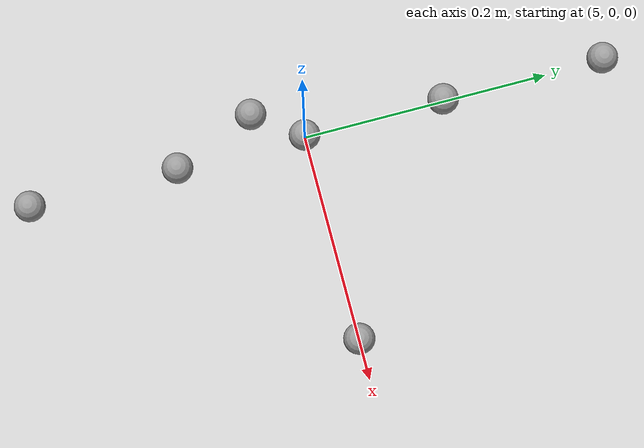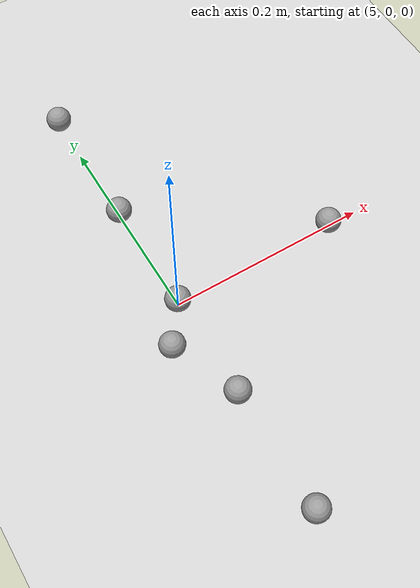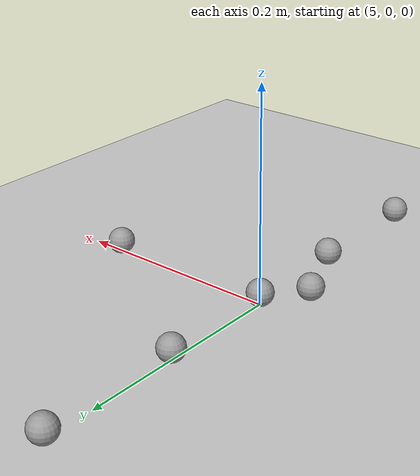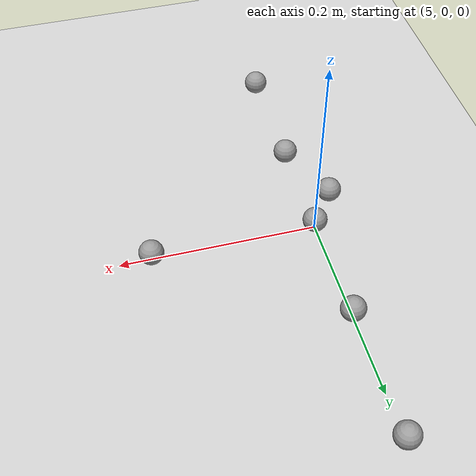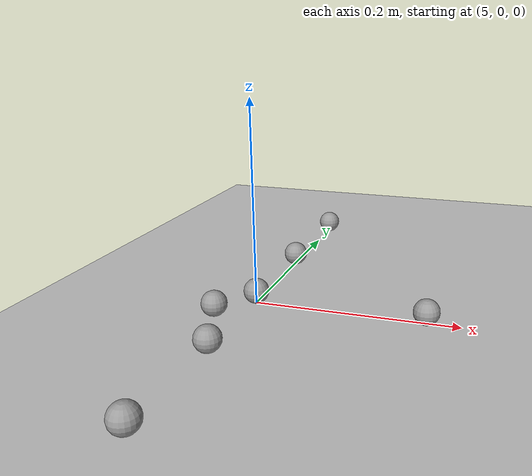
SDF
<sdf version="1.6">
 <world name="default">
  <model name="ground_plane">
   <static>1</static>
   <link name="link">
    <collision name="collision">
     <geometry><plane><normal>0 0 1</normal><size>100 100</size></plane></geometry>
     <surface><friction><ode><mu>100</mu><mu2>50</mu2></ode></friction></surface>
    </collision>
    <visual name="visual">
     <cast_shadows>0</cast_shadows>
     <geometry><plane><normal>0 0 1</normal><size>100 100</size></plane></geometry>
     <material>
      <script><uri>file://media/materials/scripts/gazebo.material</uri><name>Gazebo/Grey</name></script>
     </material>
    </visual>
   </link>
  </model>
  <model name="ball_bearing_7_clone_4">
   <link name="link">
    <pose>0 0 0.003 0 -0 0</pose>
    <inertial>
     <mass>0.0011</mass>
     <inertia>
      <ixx>3.96e-09</ixx>
      <ixy>0</ixy>
      <ixz>0</ixz>
      <iyy>3.96e-09</iyy>
      <iyz>0</iyz>
      <izz>3.96e-09</izz>
     </inertia>
    </inertial>
    <collision name="collision">
     <geometry><sphere><radius>0.0125</radius></sphere></geometry>
     <surface>
      <contact>
       <poissons_ratio>0.305</poissons_ratio>
       <elastic_modulus>2e+11</elastic_modulus>
       <ode><kp>100000</kp><kd>100</kd><max_vel>100</max_vel><min_depth>0.001</min_depth></ode>
      </contact>
      <friction>
       <torsional>
        <coefficient>1</coefficient>
        <use_patch_radius>0</use_patch_radius>
        <surface_radius>0.01</surface_radius>
       </torsional>
      </friction>
     </surface>
    </collision>
    <visual name="visual">
     <geometry><sphere><radius>0.0125</radius></sphere></geometry>
     <material>
      <script><uri>file://media/materials/scripts/gazebo.material</uri><name>Gazebo/Grey</name></script>
     </material>
    </visual>
    <velocity_decay><linear>0</linear><angular>0.005</angular></velocity_decay>
   </link>
   <pose>5 -0.224227 0.009033 0 -0 0</pose>
  </model>
  <model name="ball_bearing_7_clone_5">
   <link name="link">
    <pose>0 0 0.003 0 -0 0</pose>
    <inertial>
     <mass>0.0011</mass>
     <inertia>
      <ixx>3.96e-09</ixx>
      <ixy>0</ixy>
      <ixz>0</ixz>
      <iyy>3.96e-09</iyy>
      <iyz>0</iyz>
      <izz>3.96e-09</izz>
     </inertia>
    </inertial>
    <collision name="collision">
     <geometry><sphere><radius>0.0125</radius></sphere></geometry>
     <surface>
      <contact>
       <poissons_ratio>0.305</poissons_ratio>
       <elastic_modulus>2e+11</elastic_modulus>
       <ode><kp>100000</kp><kd>100</kd><max_vel>100</max_vel><min_depth>0.001</min_depth></ode>
      </contact>
      <friction>
       <torsional>
        <coefficient>1</coefficient>
        <use_patch_radius>0</use_patch_radius>
        <surface_radius>0.01</surface_radius>
       </torsional>
      </friction>
     </surface>
    </collision>
    <visual name="visual">
     <geometry><sphere><radius>0.0125</radius></sphere></geometry>
     <material>
      <script><uri>file://media/materials/scripts/gazebo.material</uri><name>Gazebo/Grey</name></script>
     </material>
    </visual>
    <velocity_decay><linear>0</linear><angular>0.005</angular></velocity_decay>
   </link>
   <pose>5 0.11411 0.009338 0 -0 0</pose>
  </model>
  <model name="ball_bearing_7_clone_7">
   <link name="link">
    <pose>0 0 0.003 0 -0 0</pose>
    <inertial>
     <mass>0.0011</mass>
     <inertia>
      <ixx>3.96e-09</ixx>
      <ixy>0</ixy>
      <ixz>0</ixz>
      <iyy>3.96e-09</iyy>
      <iyz>0</iyz>
      <izz>3.96e-09</izz>
     </inertia>
    </inertial>
    <collision name="collision">
     <geometry><sphere><radius>0.0125</radius></sphere></geometry>
     <surface>
      <contact>
       <poissons_ratio>0.305</poissons_ratio>
       <elastic_modulus>2e+11</elastic_modulus>
       <ode><kp>100000</kp><kd>100</kd><max_vel>100</max_vel><min_depth>0.001</min_depth></ode>
      </contact>
      <friction>
       <torsional>
        <coefficient>1</coefficient>
        <use_patch_radius>0</use_patch_radius>
        <surface_radius>0.01</surface_radius>
       </torsional>
      </friction>
     </surface>
    </collision>
    <visual name="visual">
     <geometry><sphere><radius>0.0125</radius></sphere></geometry>
     <material>
      <script><uri>file://media/materials/scripts/gazebo.material</uri><name>Gazebo/Grey</name></script>
     </material>
    </visual>
    <velocity_decay><linear>0</linear><angular>0.005</angular></velocity_decay>
   </link>
   <pose>5 0 0.009312 0 -0 0</pose>
  </model>
  <model name="ball_bearing_7_clone_8">
   <link name="link">
    <pose>0 0 0.003 0 -0 0</pose>
    <inertial>
     <mass>0.0011</mass>
     <inertia>
      <ixx>3.96e-09</ixx>
      <ixy>0</ixy>
      <ixz>0</ixz>
      <iyy>3.96e-09</iyy>
      <iyz>0</iyz>
      <izz>3.96e-09</izz>
     </inertia>
    </inertial>
    <collision name="collision">
     <geometry><sphere><radius>0.0125</radius></sphere></geometry>
     <surface>
      <contact>
       <poissons_ratio>0.305</poissons_ratio>
       <elastic_modulus>2e+11</elastic_modulus>
       <ode><kp>100000</kp><kd>100</kd><max_vel>100</max_vel><min_depth>0.001</min_depth></ode>
      </contact>
      <friction>
       <torsional>
        <coefficient>1</coefficient>
        <use_patch_radius>0</use_patch_radius>
        <surface_radius>0.01</surface_radius>
       </torsional>
      </friction>
     </surface>
    </collision>
    <visual name="visual">
     <geometry><sphere><radius>0.0125</radius></sphere></geometry>
     <material>
      <script><uri>file://media/materials/scripts/gazebo.material</uri><name>Gazebo/Grey</name></script>
     </material>
    </visual>
    <velocity_decay><linear>0</linear><angular>0.005</angular></velocity_decay>
   </link>
   <pose>5 -0.104106 0.0085 0 -0 0</pose>
  </model>
  <model name="ball_bearing_7_clone_11">
   <link name="link">
    <pose>0 0 0.003 0 -0 0</pose>
    <inertial>
     <mass>0.0011</mass>
     <inertia>
      <ixx>3.96e-09</ixx>
      <ixy>0</ixy>
      <ixz>0</ixz>
      <iyy>3.96e-09</iyy>
      <iyz>0</iyz>
      <izz>3.96e-09</izz>
     </inertia>
    </inertial>
    <collision name="collision">
     <geometry><sphere><radius>0.0125</radius></sphere></geometry>
     <surface>
      <contact>
       <poissons_ratio>0.305</poissons_ratio>
       <elastic_modulus>2e+11</elastic_modulus>
       <ode><kp>100000</kp><kd>100</kd><max_vel>100</max_vel><min_depth>0.001</min_depth></ode>
      </contact>
      <friction>
       <torsional>
        <coefficient>1</coefficient>
        <use_patch_radius>0</use_patch_radius>
        <surface_radius>0.01</surface_radius>
       </torsional>
      </friction>
     </surface>
    </collision>
    <visual name="visual">
     <geometry><sphere><radius>0.0125</radius></sphere></geometry>
     <material>
      <script><uri>file://media/materials/scripts/gazebo.material</uri><name>Gazebo/Grey</name></script>
     </material>
    </visual>
    <velocity_decay><linear>0</linear><angular>0.005</angular></velocity_decay>
   </link>
   <pose>5 0.246166 0.008528 0 -0 0</pose>
  </model>
  <model name="ball_bearing_7_clone_12">
   <link name="link">
    <pose>0 0 0.003 0 -0 0</pose>
    <inertial>
     <mass>0.0011</mass>
     <inertia>
      <ixx>3.96e-09</ixx>
      <ixy>0</ixy>
      <ixz>0</ixz>
      <iyy>3.96e-09</iyy>
      <iyz>0</iyz>
      <izz>3.96e-09</izz>
     </inertia>
    </inertial>
    <collision name="collision">
     <geometry><sphere><radius>0.0125</radius></sphere></geometry>
     <surface>
      <contact>
       <poissons_ratio>0.305</poissons_ratio>
       <elastic_modulus>2e+11</elastic_modulus>
       <ode><kp>100000</kp><kd>100</kd><max_vel>100</max_vel><min_depth>0.001</min_depth></ode>
      </contact>
      <friction>
       <torsional>
        <coefficient>1</coefficient>
        <use_patch_radius>0</use_patch_radius>
        <surface_radius>0.01</surface_radius>
       </torsional>
      </friction>
     </surface>
    </collision>
    <visual name="visual">
     <geometry><sphere><radius>0.0125</radius></sphere></geometry>
     <material>
      <script><uri>file://media/materials/scripts/gazebo.material</uri><name>Gazebo/Grey</name></script>
     </material>
    </visual>
    <velocity_decay><linear>0</linear><angular>0.005</angular></velocity_decay>
   </link>
   <pose>5.16752 0 0.0085 0 -0 0</pose>
  </model>
  <model name="ball_bearing_7_clone_13">
   <link name="link">
    <pose>0 0 0.003 0 -0 0</pose>
    <inertial>
     <mass>0.0011</mass>
     <inertia>
      <ixx>3.96e-09</ixx>
      <ixy>0</ixy>
      <ixz>0</ixz>
      <iyy>3.96e-09</iyy>
      <iyz>0</iyz>
      <izz>3.96e-09</izz>
     </inertia>
    </inertial>
    <collision name="collision">
     <geometry><sphere><radius>0.0125</radius></sphere></geometry>
     <surface>
      <contact>
       <poissons_ratio>0.305</poissons_ratio>
       <elastic_modulus>2e+11</elastic_modulus>
       <ode><kp>100000</kp><kd>100</kd><max_vel>100</max_vel><min_depth>0.001</min_depth></ode>
      </contact>
      <friction>
       <torsional>
        <coefficient>1</coefficient>
        <use_patch_radius>0</use_patch_radius>
        <surface_radius>0.01</surface_radius>
       </torsional>
      </friction>
     </surface>
    </collision>
    <visual name="visual">
     <geometry><sphere><radius>0.0125</radius></sphere></geometry>
     <material>
      <script><uri>file://media/materials/scripts/gazebo.material</uri><name>Gazebo/Grey</name></script>
     </material>
    </visual>
    <velocity_decay><linear>0</linear><angular>0.005</angular></velocity_decay>
   </link>
   <pose>4.97273 -0.037218 0.0085 0 -0 0</pose>
  </model>
 </world>
</sdf>
